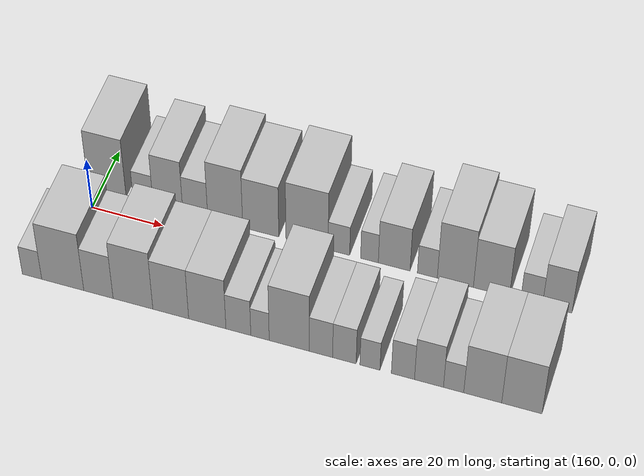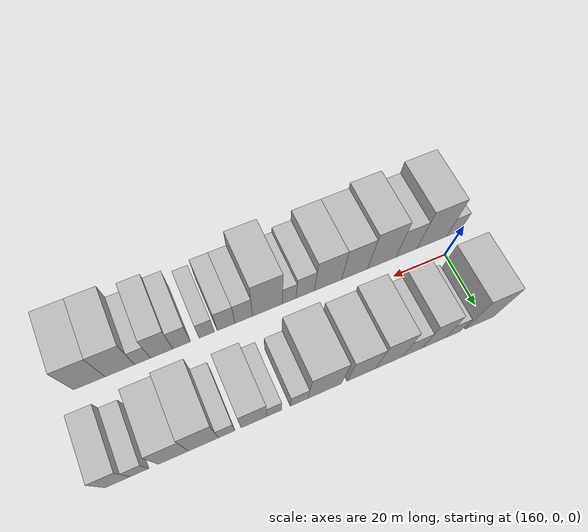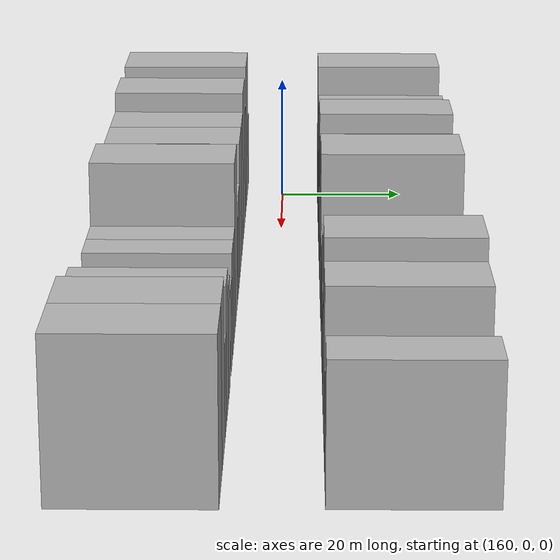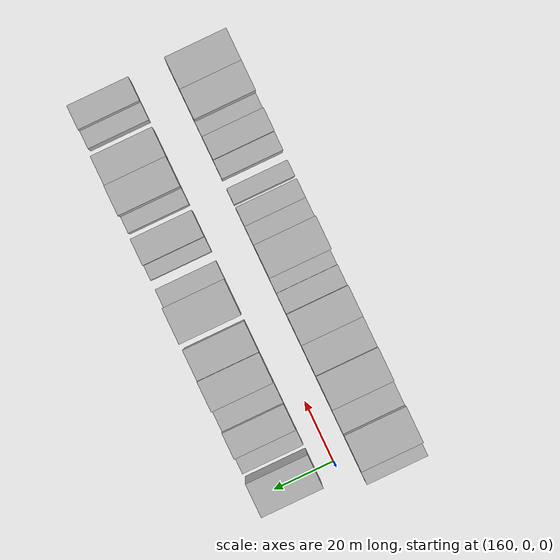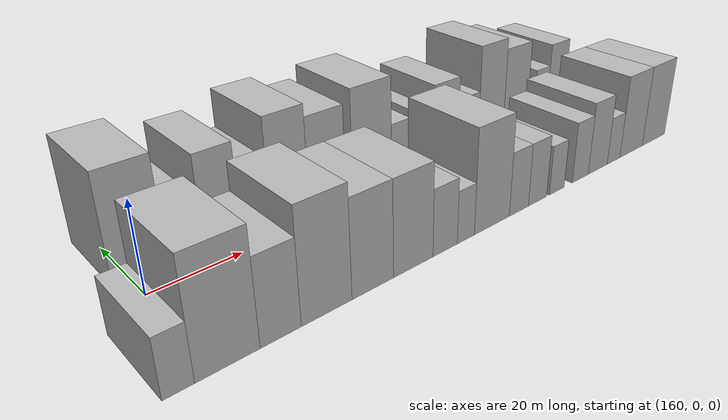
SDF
<sdf version="1.6">
 <world name="default">
  <model name="building_15">
   <static>1</static>
   <pose>161.9181 16.0000 0 0.000000 0.000000 1.570796</pose>
   <link name="link">
    <pose>0 0 12.00 0 0 0</pose>
    <collision name="collision"><geometry><box><size>20.0000 10.8161 24.0000</size></box></geometry></collision>
    <visual name="visual">
     <cast_shadows>0</cast_shadows>
     <geometry><box><size>20.0000 10.8161 24.0000</size></box></geometry>
     <material>
      <script>
       <uri>model://HANNAS_wall/materials/scripts</uri>
       <uri>model://HANNAS_wall/materials/textures</uri>
       <name>vrc/HANNAS_wall</name>
      </script>
     </material>
    </visual>
   </link>
  </model>
  <model name="building_16">
   <static>1</static>
   <pose>172.1566 16.0000 0 0.000000 0.000000 1.570796</pose>
   <link name="link">
    <pose>0 0 6.00 0 0 0</pose>
    <collision name="collision"><geometry><box><size>20.0000 5.6610 12.0000</size></box></geometry></collision>
    <visual name="visual">
     <cast_shadows>0</cast_shadows>
     <geometry><box><size>20.0000 5.6610 12.0000</size></box></geometry>
     <material>
      <script>
       <uri>model://HANNAS_wall/materials/scripts</uri>
       <uri>model://HANNAS_wall/materials/textures</uri>
       <name>vrc/HANNAS_wall</name>
      </script>
     </material>
    </visual>
   </link>
  </model>
  <model name="building_17">
   <static>1</static>
   <pose>179.1980 16.0000 0 0.000000 0.000000 1.570796</pose>
   <link name="link">
    <pose>0 0 10.50 0 0 0</pose>
    <collision name="collision"><geometry><box><size>20.0000 8.4216 21.0000</size></box></geometry></collision>
    <visual name="visual">
     <cast_shadows>0</cast_shadows>
     <geometry><box><size>20.0000 8.4216 21.0000</size></box></geometry>
     <material>
      <script>
       <uri>model://HANNAS_wall/materials/scripts</uri>
       <uri>model://HANNAS_wall/materials/textures</uri>
       <name>vrc/HANNAS_wall</name>
      </script>
     </material>
    </visual>
   </link>
  </model>
  <model name="building_18">
   <static>1</static>
   <pose>186.9294 16.0000 0 0.000000 0.000000 1.570796</pose>
   <link name="link">
    <pose>0 0 7.50 0 0 0</pose>
    <collision name="collision"><geometry><box><size>20.0000 7.0414 15.0000</size></box></geometry></collision>
    <visual name="visual">
     <cast_shadows>0</cast_shadows>
     <geometry><box><size>20.0000 7.0414 15.0000</size></box></geometry>
     <material>
      <script>
       <uri>model://HANNAS_wall/materials/scripts</uri>
       <uri>model://HANNAS_wall/materials/textures</uri>
       <name>vrc/HANNAS_wall</name>
      </script>
     </material>
    </visual>
   </link>
  </model>
  <model name="building_19">
   <static>1</static>
   <pose>195.3550 16.0000 0 0.000000 0.000000 1.570796</pose>
   <link name="link">
    <pose>0 0 12.00 0 0 0</pose>
    <collision name="collision"><geometry><box><size>20.0000 9.8097 24.0000</size></box></geometry></collision>
    <visual name="visual">
     <cast_shadows>0</cast_shadows>
     <geometry><box><size>20.0000 9.8097 24.0000</size></box></geometry>
     <material>
      <script>
       <uri>model://HANNAS_wall/materials/scripts</uri>
       <uri>model://HANNAS_wall/materials/textures</uri>
       <name>vrc/HANNAS_wall</name>
      </script>
     </material>
    </visual>
   </link>
  </model>
  <model name="building_20">
   <static>1</static>
   <pose>205.2754 16.0000 0 0.000000 0.000000 1.570796</pose>
   <link name="link">
    <pose>0 0 10.50 0 0 0</pose>
    <collision name="collision"><geometry><box><size>20.0000 10.0312 21.0000</size></box></geometry></collision>
    <visual name="visual">
     <cast_shadows>0</cast_shadows>
     <geometry><box><size>20.0000 10.0312 21.0000</size></box></geometry>
     <material>
      <script>
       <uri>model://HANNAS_wall/materials/scripts</uri>
       <uri>model://HANNAS_wall/materials/textures</uri>
       <name>vrc/HANNAS_wall</name>
      </script>
     </material>
    </visual>
   </link>
  </model>
  <model name="building_21">
   <static>1</static>
   <pose>218.1101 16.0000 0 0.000000 0.000000 1.570796</pose>
   <link name="link">
    <pose>0 0 12.00 0 0 0</pose>
    <collision name="collision"><geometry><box><size>20.0000 11.6382 24.0000</size></box></geometry></collision>
    <visual name="visual">
     <cast_shadows>0</cast_shadows>
     <geometry><box><size>20.0000 11.6382 24.0000</size></box></geometry>
     <material>
      <script>
       <uri>model://HANNAS_wall/materials/scripts</uri>
       <uri>model://HANNAS_wall/materials/textures</uri>
       <name>vrc/HANNAS_wall</name>
      </script>
     </material>
    </visual>
   </link>
  </model>
  <model name="building_22">
   <static>1</static>
   <pose>226.8949 16.0000 0 0.000000 0.000000 1.570796</pose>
   <link name="link">
    <pose>0 0 6.00 0 0 0</pose>
    <collision name="collision"><geometry><box><size>20.0000 5.9314 12.0000</size></box></geometry></collision>
    <visual name="visual">
     <cast_shadows>0</cast_shadows>
     <geometry><box><size>20.0000 5.9314 12.0000</size></box></geometry>
     <material>
      <script>
       <uri>model://HANNAS_wall/materials/scripts</uri>
       <uri>model://HANNAS_wall/materials/textures</uri>
       <name>vrc/HANNAS_wall</name>
      </script>
     </material>
    </visual>
   </link>
  </model>
  <model name="building_23">
   <static>1</static>
   <pose>235.2783 16.0000 0 0.000000 0.000000 1.570796</pose>
   <link name="link">
    <pose>0 0 6.00 0 0 0</pose>
    <collision name="collision"><geometry><box><size>20.0000 4.8353 12.0000</size></box></geometry></collision>
    <visual name="visual">
     <cast_shadows>0</cast_shadows>
     <geometry><box><size>20.0000 4.8353 12.0000</size></box></geometry>
     <material>
      <script>
       <uri>model://HANNAS_wall/materials/scripts</uri>
       <uri>model://HANNAS_wall/materials/textures</uri>
       <name>vrc/HANNAS_wall</name>
      </script>
     </material>
    </visual>
   </link>
  </model>
  <model name="building_24">
   <static>1</static>
   <pose>242.0140 16.0000 0 0.000000 0.000000 1.570796</pose>
   <link name="link">
    <pose>0 0 9.00 0 0 0</pose>
    <collision name="collision"><geometry><box><size>20.0000 8.6360 18.0000</size></box></geometry></collision>
    <visual name="visual">
     <cast_shadows>0</cast_shadows>
     <geometry><box><size>20.0000 8.6360 18.0000</size></box></geometry>
     <material>
      <script>
       <uri>model://HANNAS_wall/materials/scripts</uri>
       <uri>model://HANNAS_wall/materials/textures</uri>
       <name>vrc/HANNAS_wall</name>
      </script>
     </material>
    </visual>
   </link>
  </model>
  <model name="building_25">
   <static>1</static>
   <pose>251.0235 16.0000 0 0.000000 0.000000 1.570796</pose>
   <link name="link">
    <pose>0 0 6.00 0 0 0</pose>
    <collision name="collision"><geometry><box><size>20.0000 5.3831 12.0000</size></box></geometry></collision>
    <visual name="visual">
     <cast_shadows>0</cast_shadows>
     <geometry><box><size>20.0000 5.3831 12.0000</size></box></geometry>
     <material>
      <script>
       <uri>model://HANNAS_wall/materials/scripts</uri>
       <uri>model://HANNAS_wall/materials/textures</uri>
       <name>vrc/HANNAS_wall</name>
      </script>
     </material>
    </visual>
   </link>
  </model>
  <model name="building_26">
   <static>1</static>
   <pose>258.5705 16.0000 0 0.000000 0.000000 1.570796</pose>
   <link name="link">
    <pose>0 0 12.00 0 0 0</pose>
    <collision name="collision"><geometry><box><size>20.0000 9.7108 24.0000</size></box></geometry></collision>
    <visual name="visual">
     <cast_shadows>0</cast_shadows>
     <geometry><box><size>20.0000 9.7108 24.0000</size></box></geometry>
     <material>
      <script>
       <uri>model://HANNAS_wall/materials/scripts</uri>
       <uri>model://HANNAS_wall/materials/textures</uri>
       <name>vrc/HANNAS_wall</name>
      </script>
     </material>
    </visual>
   </link>
  </model>
  <model name="building_27">
   <static>1</static>
   <pose>268.2614 16.0000 0 0.000000 0.000000 1.570796</pose>
   <link name="link">
    <pose>0 0 10.50 0 0 0</pose>
    <collision name="collision"><geometry><box><size>20.0000 9.6710 21.0000</size></box></geometry></collision>
    <visual name="visual">
     <cast_shadows>0</cast_shadows>
     <geometry><box><size>20.0000 9.6710 21.0000</size></box></geometry>
     <material>
      <script>
       <uri>model://HANNAS_wall/materials/scripts</uri>
       <uri>model://HANNAS_wall/materials/textures</uri>
       <name>vrc/HANNAS_wall</name>
      </script>
     </material>
    </visual>
   </link>
  </model>
  <model name="building_28">
   <static>1</static>
   <pose>278.9911 16.0000 0 0.000000 0.000000 1.570796</pose>
   <link name="link">
    <pose>0 0 6.00 0 0 0</pose>
    <collision name="collision"><geometry><box><size>20.0000 5.7886 12.0000</size></box></geometry></collision>
    <visual name="visual">
     <cast_shadows>0</cast_shadows>
     <geometry><box><size>20.0000 5.7886 12.0000</size></box></geometry>
     <material>
      <script>
       <uri>model://HANNAS_wall/materials/scripts</uri>
       <uri>model://HANNAS_wall/materials/textures</uri>
       <name>vrc/HANNAS_wall</name>
      </script>
     </material>
    </visual>
   </link>
  </model>
  <model name="building_29">
   <static>1</static>
   <pose>285.7840 16.0000 0 0.000000 0.000000 1.570796</pose>
   <link name="link">
    <pose>0 0 9.00 0 0 0</pose>
    <collision name="collision"><geometry><box><size>20.0000 7.7971 18.0000</size></box></geometry></collision>
    <visual name="visual">
     <cast_shadows>0</cast_shadows>
     <geometry><box><size>20.0000 7.7971 18.0000</size></box></geometry>
     <material>
      <script>
       <uri>model://HANNAS_wall/materials/scripts</uri>
       <uri>model://HANNAS_wall/materials/textures</uri>
       <name>vrc/HANNAS_wall</name>
      </script>
     </material>
    </visual>
   </link>
  </model>
  <model name="building_46">
   <static>1</static>
   <pose>153.2941 -16.0000 0 0.000000 0.000000 1.570796</pose>
   <link name="link">
    <pose>0 0 6.00 0 0 0</pose>
    <collision name="collision"><geometry><box><size>20.0000 5.4092 12.0000</size></box></geometry></collision>
    <visual name="visual">
     <cast_shadows>0</cast_shadows>
     <geometry><box><size>20.0000 5.4092 12.0000</size></box></geometry>
     <material>
      <script>
       <uri>model://HANNAS_wall/materials/scripts</uri>
       <uri>model://HANNAS_wall/materials/textures</uri>
       <name>vrc/HANNAS_wall</name>
      </script>
     </material>
    </visual>
   </link>
  </model>
  <model name="building_47">
   <static>1</static>
   <pose>161.8614 -16.0000 0 0.000000 0.000000 1.570796</pose>
   <link name="link">
    <pose>0 0 12.00 0 0 0</pose>
    <collision name="collision"><geometry><box><size>20.0000 11.7254 24.0000</size></box></geometry></collision>
    <visual name="visual">
     <cast_shadows>0</cast_shadows>
     <geometry><box><size>20.0000 11.7254 24.0000</size></box></geometry>
     <material>
      <script>
       <uri>model://HANNAS_wall/materials/scripts</uri>
       <uri>model://HANNAS_wall/materials/textures</uri>
       <name>vrc/HANNAS_wall</name>
      </script>
     </material>
    </visual>
   </link>
  </model>
  <model name="building_48">
   <static>1</static>
   <pose>171.7860 -16.0000 0 0.000000 0.000000 1.570796</pose>
   <link name="link">
    <pose>0 0 9.00 0 0 0</pose>
    <collision name="collision"><geometry><box><size>20.0000 8.1237 18.0000</size></box></geometry></collision>
    <visual name="visual">
     <cast_shadows>0</cast_shadows>
     <geometry><box><size>20.0000 8.1237 18.0000</size></box></geometry>
     <material>
      <script>
       <uri>model://HANNAS_wall/materials/scripts</uri>
       <uri>model://HANNAS_wall/materials/textures</uri>
       <name>vrc/HANNAS_wall</name>
      </script>
     </material>
    </visual>
   </link>
  </model>
  <model name="building_49">
   <static>1</static>
   <pose>181.3100 -16.0000 0 0.000000 0.000000 1.570796</pose>
   <link name="link">
    <pose>0 0 12.00 0 0 0</pose>
    <collision name="collision"><geometry><box><size>20.0000 10.9243 24.0000</size></box></geometry></collision>
    <visual name="visual">
     <cast_shadows>0</cast_shadows>
     <geometry><box><size>20.0000 10.9243 24.0000</size></box></geometry>
     <material>
      <script>
       <uri>model://HANNAS_wall/materials/scripts</uri>
       <uri>model://HANNAS_wall/materials/textures</uri>
       <name>vrc/HANNAS_wall</name>
      </script>
     </material>
    </visual>
   </link>
  </model>
  <model name="building_50">
   <static>1</static>
   <pose>191.6670 -16.0000 0 0.000000 0.000000 1.570796</pose>
   <link name="link">
    <pose>0 0 10.50 0 0 0</pose>
    <collision name="collision"><geometry><box><size>20.0000 9.7896 21.0000</size></box></geometry></collision>
    <visual name="visual">
     <cast_shadows>0</cast_shadows>
     <geometry><box><size>20.0000 9.7896 21.0000</size></box></geometry>
     <material>
      <script>
       <uri>model://HANNAS_wall/materials/scripts</uri>
       <uri>model://HANNAS_wall/materials/textures</uri>
       <name>vrc/HANNAS_wall</name>
      </script>
     </material>
    </visual>
   </link>
  </model>
  <model name="building_51">
   <static>1</static>
   <pose>201.6233 -16.0000 0 0.000000 0.000000 1.570796</pose>
   <link name="link">
    <pose>0 0 10.50 0 0 0</pose>
    <collision name="collision"><geometry><box><size>20.0000 10.1229 21.0000</size></box></geometry></collision>
    <visual name="visual">
     <cast_shadows>0</cast_shadows>
     <geometry><box><size>20.0000 10.1229 21.0000</size></box></geometry>
     <material>
      <script>
       <uri>model://HANNAS_wall/materials/scripts</uri>
       <uri>model://HANNAS_wall/materials/textures</uri>
       <name>vrc/HANNAS_wall</name>
      </script>
     </material>
    </visual>
   </link>
  </model>
  <model name="building_52">
   <static>1</static>
   <pose>210.0432 -16.0000 0 0.000000 0.000000 1.570796</pose>
   <link name="link">
    <pose>0 0 7.50 0 0 0</pose>
    <collision name="collision"><geometry><box><size>20.0000 6.7171 15.0000</size></box></geometry></collision>
    <visual name="visual">
     <cast_shadows>0</cast_shadows>
     <geometry><box><size>20.0000 6.7171 15.0000</size></box></geometry>
     <material>
      <script>
       <uri>model://HANNAS_wall/materials/scripts</uri>
       <uri>model://HANNAS_wall/materials/textures</uri>
       <name>vrc/HANNAS_wall</name>
      </script>
     </material>
    </visual>
   </link>
  </model>
  <model name="building_53">
   <static>1</static>
   <pose>215.8749 -16.0000 0 0.000000 0.000000 1.570796</pose>
   <link name="link">
    <pose>0 0 6.00 0 0 0</pose>
    <collision name="collision"><geometry><box><size>20.0000 4.9461 12.0000</size></box></geometry></collision>
    <visual name="visual">
     <cast_shadows>0</cast_shadows>
     <geometry><box><size>20.0000 4.9461 12.0000</size></box></geometry>
     <material>
      <script>
       <uri>model://HANNAS_wall/materials/scripts</uri>
       <uri>model://HANNAS_wall/materials/textures</uri>
       <name>vrc/HANNAS_wall</name>
      </script>
     </material>
    </visual>
   </link>
  </model>
  <model name="building_54">
   <static>1</static>
   <pose>223.7109 -16.0000 0 0.000000 0.000000 1.570796</pose>
   <link name="link">
    <pose>0 0 12.00 0 0 0</pose>
    <collision name="collision"><geometry><box><size>20.0000 10.7259 24.0000</size></box></geometry></collision>
    <visual name="visual">
     <cast_shadows>0</cast_shadows>
     <geometry><box><size>20.0000 10.7259 24.0000</size></box></geometry>
     <material>
      <script>
       <uri>model://HANNAS_wall/materials/scripts</uri>
       <uri>model://HANNAS_wall/materials/textures</uri>
       <name>vrc/HANNAS_wall</name>
      </script>
     </material>
    </visual>
   </link>
  </model>
  <model name="building_55">
   <static>1</static>
   <pose>232.1839 -16.0000 0 0.000000 0.000000 1.570796</pose>
   <link name="link">
    <pose>0 0 7.50 0 0 0</pose>
    <collision name="collision"><geometry><box><size>20.0000 6.2202 15.0000</size></box></geometry></collision>
    <visual name="visual">
     <cast_shadows>0</cast_shadows>
     <geometry><box><size>20.0000 6.2202 15.0000</size></box></geometry>
     <material>
      <script>
       <uri>model://HANNAS_wall/materials/scripts</uri>
       <uri>model://HANNAS_wall/materials/textures</uri>
       <name>vrc/HANNAS_wall</name>
      </script>
     </material>
    </visual>
   </link>
  </model>
  <model name="building_56">
   <static>1</static>
   <pose>238.4072 -16.0000 0 0.000000 0.000000 1.570796</pose>
   <link name="link">
    <pose>0 0 7.50 0 0 0</pose>
    <collision name="collision"><geometry><box><size>20.0000 6.2264 15.0000</size></box></geometry></collision>
    <visual name="visual">
     <cast_shadows>0</cast_shadows>
     <geometry><box><size>20.0000 6.2264 15.0000</size></box></geometry>
     <material>
      <script>
       <uri>model://HANNAS_wall/materials/scripts</uri>
       <uri>model://HANNAS_wall/materials/textures</uri>
       <name>vrc/HANNAS_wall</name>
      </script>
     </material>
    </visual>
   </link>
  </model>
  <model name="building_57">
   <static>1</static>
   <pose>245.1612 -16.0000 0 0.000000 0.000000 1.570796</pose>
   <link name="link">
    <pose>0 0 6.00 0 0 0</pose>
    <collision name="collision"><geometry><box><size>20.0000 5.2815 12.0000</size></box></geometry></collision>
    <visual name="visual">
     <cast_shadows>0</cast_shadows>
     <geometry><box><size>20.0000 5.2815 12.0000</size></box></geometry>
     <material>
      <script>
       <uri>model://HANNAS_wall/materials/scripts</uri>
       <uri>model://HANNAS_wall/materials/textures</uri>
       <name>vrc/HANNAS_wall</name>
      </script>
     </material>
    </visual>
   </link>
  </model>
  <model name="building_58">
   <static>1</static>
   <pose>253.8416 -16.0000 0 0.000000 0.000000 1.570796</pose>
   <link name="link">
    <pose>0 0 7.50 0 0 0</pose>
    <collision name="collision"><geometry><box><size>20.0000 6.0793 15.0000</size></box></geometry></collision>
    <visual name="visual">
     <cast_shadows>0</cast_shadows>
     <geometry><box><size>20.0000 6.0793 15.0000</size></box></geometry>
     <material>
      <script>
       <uri>model://HANNAS_wall/materials/scripts</uri>
       <uri>model://HANNAS_wall/materials/textures</uri>
       <name>vrc/HANNAS_wall</name>
      </script>
     </material>
    </visual>
   </link>
  </model>
  <model name="building_59">
   <static>1</static>
   <pose>260.6658 -16.0000 0 0.000000 0.000000 1.570796</pose>
   <link name="link">
    <pose>0 0 9.00 0 0 0</pose>
    <collision name="collision"><geometry><box><size>20.0000 7.5692 18.0000</size></box></geometry></collision>
    <visual name="visual">
     <cast_shadows>0</cast_shadows>
     <geometry><box><size>20.0000 7.5692 18.0000</size></box></geometry>
     <material>
      <script>
       <uri>model://HANNAS_wall/materials/scripts</uri>
       <uri>model://HANNAS_wall/materials/textures</uri>
       <name>vrc/HANNAS_wall</name>
      </script>
     </material>
    </visual>
   </link>
  </model>
  <model name="building_60">
   <static>1</static>
   <pose>267.0827 -16.0000 0 0.000000 0.000000 1.570796</pose>
   <link name="link">
    <pose>0 0 6.00 0 0 0</pose>
    <collision name="collision"><geometry><box><size>20.0000 5.2646 12.0000</size></box></geometry></collision>
    <visual name="visual">
     <cast_shadows>0</cast_shadows>
     <geometry><box><size>20.0000 5.2646 12.0000</size></box></geometry>
     <material>
      <script>
       <uri>model://HANNAS_wall/materials/scripts</uri>
       <uri>model://HANNAS_wall/materials/textures</uri>
       <name>vrc/HANNAS_wall</name>
      </script>
     </material>
    </visual>
   </link>
  </model>
  <model name="building_61">
   <static>1</static>
   <pose>274.6270 -16.0000 0 0.000000 0.000000 1.570796</pose>
   <link name="link">
    <pose>0 0 10.50 0 0 0</pose>
    <collision name="collision"><geometry><box><size>20.0000 9.8239 21.0000</size></box></geometry></collision>
    <visual name="visual">
     <cast_shadows>0</cast_shadows>
     <geometry><box><size>20.0000 9.8239 21.0000</size></box></geometry>
     <material>
      <script>
       <uri>model://HANNAS_wall/materials/scripts</uri>
       <uri>model://HANNAS_wall/materials/textures</uri>
       <name>vrc/HANNAS_wall</name>
      </script>
     </material>
    </visual>
   </link>
  </model>
  <model name="building_62">
   <static>1</static>
   <pose>284.7262 -16.0000 0 0.000000 0.000000 1.570796</pose>
   <link name="link">
    <pose>0 0 10.50 0 0 0</pose>
    <collision name="collision"><geometry><box><size>20.0000 10.3745 21.0000</size></box></geometry></collision>
    <visual name="visual">
     <cast_shadows>0</cast_shadows>
     <geometry><box><size>20.0000 10.3745 21.0000</size></box></geometry>
     <material>
      <script>
       <uri>model://HANNAS_wall/materials/scripts</uri>
       <uri>model://HANNAS_wall/materials/textures</uri>
       <name>vrc/HANNAS_wall</name>
      </script>
     </material>
    </visual>
   </link>
  </model>
 </world>
</sdf>
